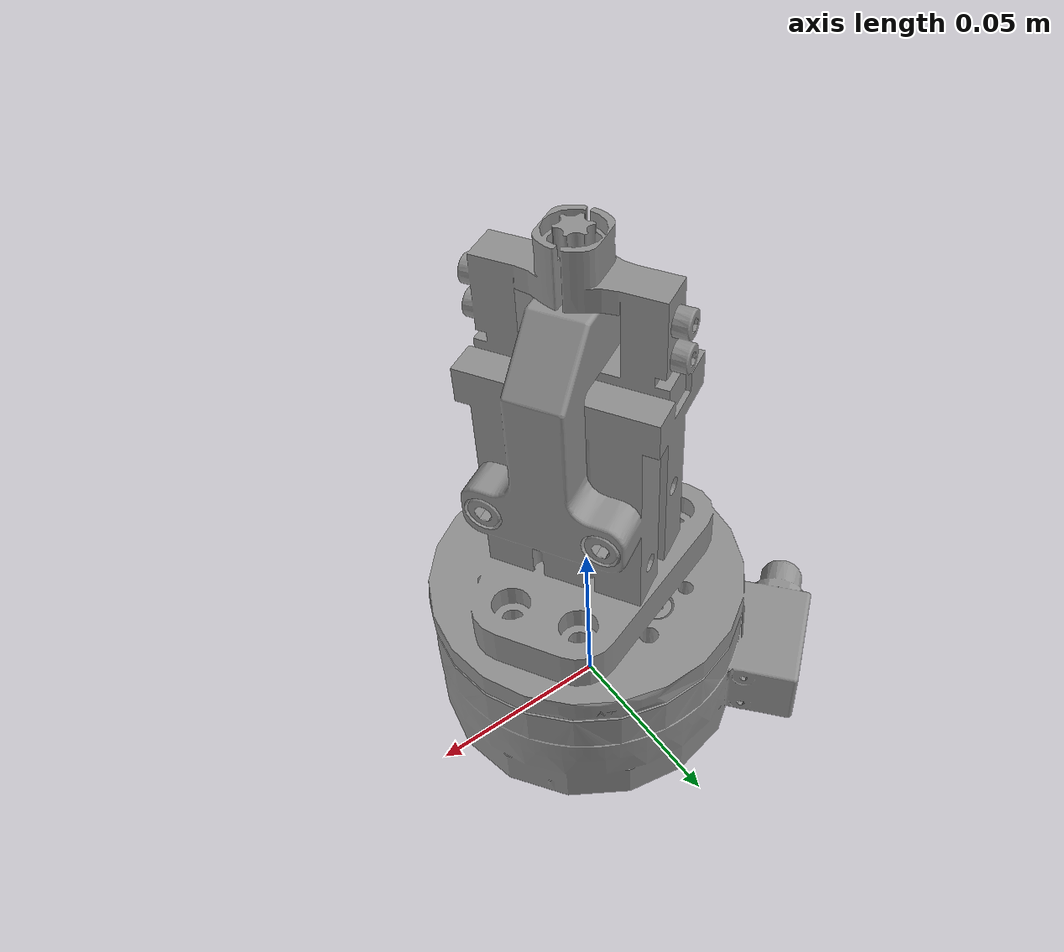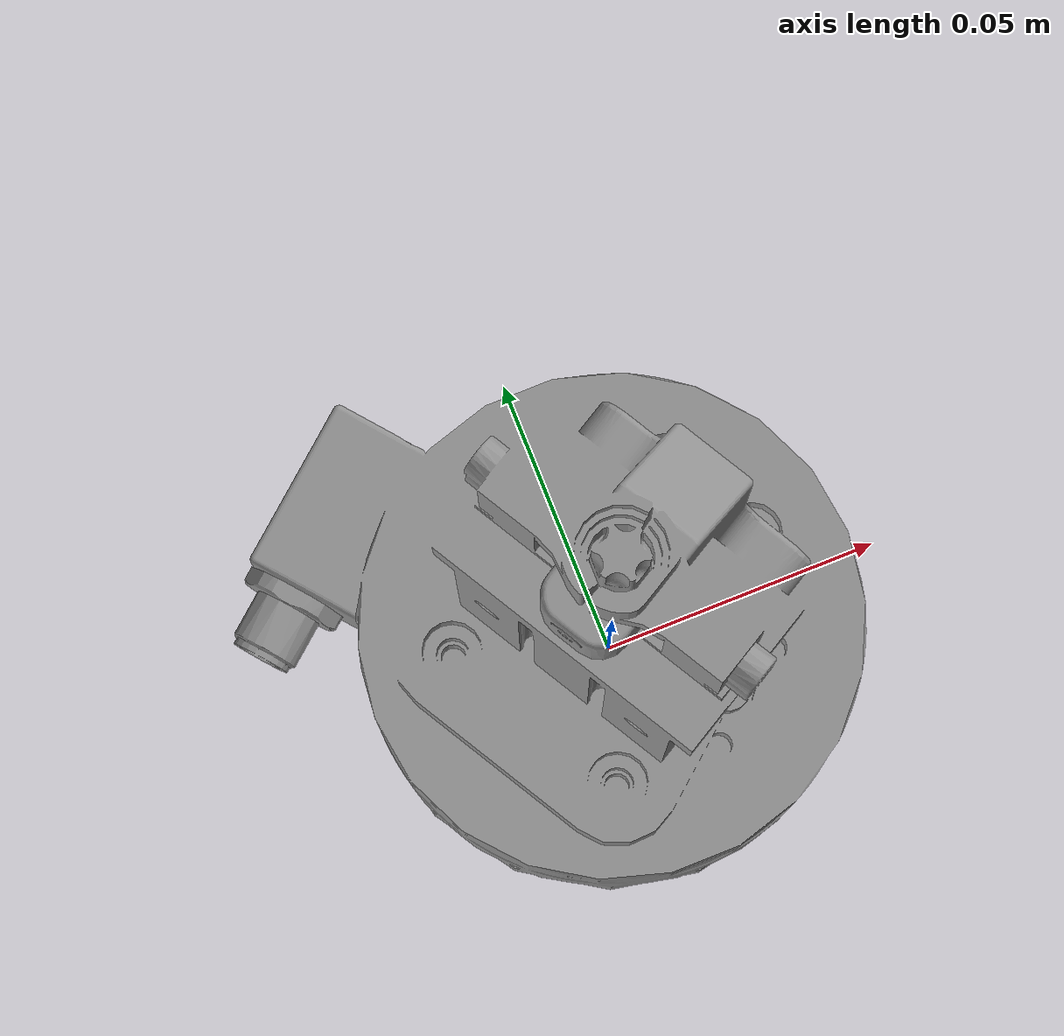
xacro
<?xml version="1.0" ?>
<robot xmlns:xacro="http://ros.org/wiki/xacro">

    <xacro:include filename="$(find xacro_materials)/urdf/materials.xacro"/>
    <xacro:include filename="$(find xacro_inertia)/urdf/inertia_table.xacro"/>
    <link name="screw_gripper">
        <visual>
            <geometry>
                <mesh filename="package://screw_gripper_description/mesh/visual/screw_gripper.stl"/>
            </geometry>
            <xacro:grey_steel/>
        </visual>
        <collision>
            <geometry>
                <mesh filename="package://screw_gripper_description/mesh/collision/screw_gripper_collision.stl"/>
            </geometry>
        </collision>
        <inertial>
          <xacro:box_inertia m="0.5" x="0.05" y="0.15" z="0.05"/>
        </inertial>
    </link>

    <link name="tcp_screw_gripper"/>

    <joint name="screw_gripper_to_tcp" type="fixed">
        <origin xyz="0 0 0.2" rpy="0 0 0"/>
        <parent link="screw_gripper"/>
        <child link="tcp_screw_gripper"/>
    </joint>

</robot>

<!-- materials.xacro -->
<robot xmlns:xacro="http://ros.org/wiki/xacro">
  <xacro:include filename="$(find xacro_materials)/urdf/colors.xacro"/>

  <!-- ===PERSO=== -->
    <xacro:macro name="white">
    <material name="">
      <color rgba="${white}"/>
    </material>
  </xacro:macro>

  <xacro:macro name="grey_light">
    <material name="">
      <color rgba="${grey_light}"/>
    </material>
  </xacro:macro>

  <xacro:macro name="grey_steel">
    <material name="">
      <color rgba="${grey_steel}"/>
    </material>
  </xacro:macro>

    <xacro:macro name="black">
    <material name="">
      <color rgba="${black}"/>
    </material>
  </xacro:macro>

    <xacro:macro name="red">
    <material name="">
      <color rgba="${red}"/>
    </material>
  </xacro:macro>

    <xacro:macro name="pastel_yellow">
    <material name="">
      <color rgba="${pastel_yellow}"/>
    </material>
  </xacro:macro>

    <!-- ===FROM MOTOMAN=== -->

  <xacro:macro name="material_yaskawa_blue">
    <material name="">
      <color rgba="${color_yaskawa_blue}"/>
    </material>
  </xacro:macro>

  <xacro:macro name="material_yaskawa_white">
    <material name="">
      <color rgba="${color_yaskawa_white}"/>
    </material>
  </xacro:macro>

  <!-- not an official colour, but used in some old xacro:macros -->
  <xacro:macro name="material_yaskawa_yellow">
    <material name="">
      <color rgba="${color_yaskawa_yellow}"/>
    </material>
  </xacro:macro>

  <!-- not an official colour, but used in some old xacro:macros -->
  <xacro:macro name="material_yaskawa_silver">
    <material name="">
      <color rgba="${color_yaskawa_silver}"/>
    </material>
  </xacro:macro>
</robot>

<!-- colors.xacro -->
<robot xmlns:xacro="http://ros.org/wiki/xacro">

    <!-- ===PERSO=== -->
    <xacro:property name="white" value="${255/255} ${255/255} ${255/255} 1.0"/>

    <xacro:property name="grey_light" value="${200/255} ${200/255} ${200/255} 1.0"/>

    <xacro:property name="grey_steel" value="${145/255} ${145/255} ${145/255} 1.0"/>

    <xacro:property name="black" value="${255/255} ${255/255} ${255/255} 1.0"/>

    <xacro:property name="red" value="${196/255} ${0/255} ${7/255} 1.0"/>

    <xacro:property name="pastel_yellow" value="${255/255} ${251/255} ${101/255} 1.0"/>

    <!-- ===FROM MOTOMAN=== -->

  <xacro:property name="color_yaskawa_blue" value="${33/255} ${38/255} ${191/255} 1.0"/>

  <xacro:property name="color_yaskawa_white" value="0.99 0.99 0.99 1"/>

  <!-- not an official colour, but used in some old xacro:macros -->
  <xacro:property name="color_yaskawa_yellow" value="0 1 1 1"/>

  <!-- not an official colour, but used in some old xacro:macros -->
  <xacro:property name="color_yaskawa_silver" value="0.8 0.8 0.8 1"/>

</robot>

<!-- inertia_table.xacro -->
<robot name="inertias" xmlns:xacro="http://www.ros.org/wiki/xacro">

    <xacro:macro name="cylinder_inertia" params="m r h">
        <inertia  ixx="${m*(3*r*r+h*h)/12}" ixy = "0" ixz = "0"
                    iyy="${m*(3*r*r+h*h)/12}" iyz = "0"
                    izz="${m*r*r/2}" />
        <mass value="${m}" />
        <origin xyz="0 0 0"/>
    </xacro:macro>

    <xacro:macro name="box_inertia" params="m x y z">
            <inertia  ixx="${m*(y*y+z*z)/12}" ixy = "0" ixz = "0"
                    iyy="${m*(x*x+z*z)/12}" iyz = "0"
                    izz="${m*(x*x+y*y)/12}" />
            <mass value="${m}" />
            <origin xyz="0 0 0"/>
    </xacro:macro>

    <xacro:macro name="sphere_inertia" params="m r">
        <mass value="${m/10}" />
        <inertia  ixx="${2*m*r*r/5}" ixy = "0" ixz = "0"
                iyy="${2*m*r*r/5}" iyz = "0"
                izz="${2*m*r*r/5}" />
        <origin xyz="0 0 0"/>

    </xacro:macro>
</robot>
